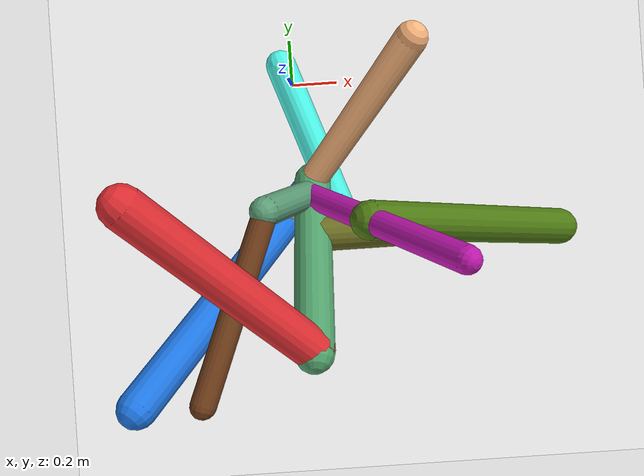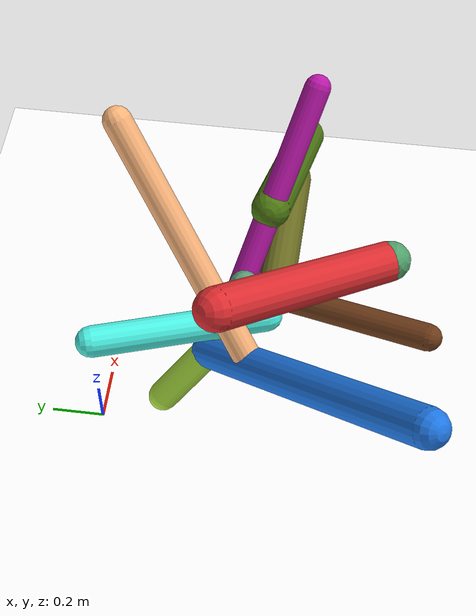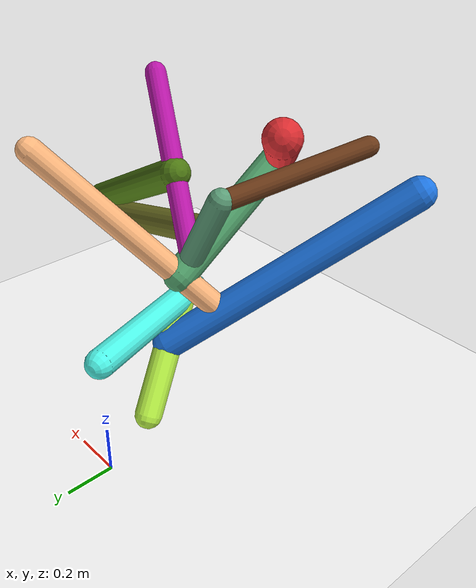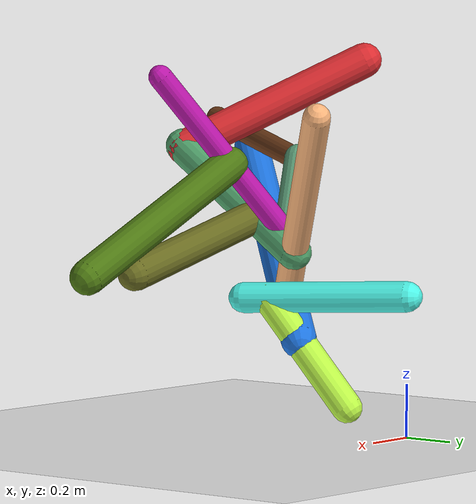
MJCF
<mujoco model="morphology">
  <option timestep="0.01"/>
  <default>
    <default class="/"/>
    <default class="0/"/>
    <default class="0/1/"/>
    <default class="0/1/2/"/>
    <default class="0/1/2/3/"/>
    <default class="0/1/2/3/4/"/>
    <default class="0/1/2/3/4/5/"/>
    <default class="0/1/2/3/4/6/"/>
    <default class="0/1/2/3/4/7/"/>
    <default class="0/1/2/3/4/7/8/"/>
    <default class="0/1/2/3/4/7/9/"/>
    <default class="0/1/2/3/4/7/9/10/"/>
  </default>
  <asset>
    <texture name="texplane" type="2d" builtin="checker" rgb1="0.10000000000000001 0.20000000000000001 0.29999999999999999" rgb2="0.20000000000000001 0.29999999999999999 0.40000000000000002" width="300" height="300"/>
    <material name="MatPlane" class="/" texture="texplane" texrepeat="20 20" specular="1" shininess="1" reflectance="0.5"/>
  </asset>
  <worldbody>
    <light name="//unnamed_light_0" class="/" directional="true" pos="0 0 1.5" dir="0 0 -1.3" cutoff="100" exponent="1" diffuse="1 1 1" specular="0.10000000000000001 0.10000000000000001 0.10000000000000001"/>
    <geom name="ground" class="/" type="plane" size="15 15 0.5" material="MatPlane" rgba="1 1 1 1"/>
    <site name="body" class="/" size="9.9999999999999995e-07 9.9999999999999995e-07 9.9999999999999995e-07" pos="0 0 0.52476311326026914"/>
    <body pos="0 0 0.52476311326026914" name="0/">
      <freejoint name="0/"/>
      <geom name="0/geom" class="0/" type="capsule" contype="1" conaffinity="1" condim="3" size="0.058018238157276227" rgba="0.3104268732166523 0.97795915610077488 0.92518313110191741 1" friction="0.59999999999999998 0.10000000000000001 0.10000000000000001" fromto="0 0 0 0.20763940196108199 -0.6102226792275377 -0.024332879514343153"/>
      <site name="0/end0" class="0/" size="0.0050000000000000001" pos="0.20763940196108199 -0.6102226792275377 -0.024332879514343153"/>
      <site name="0/attach1" class="0/" size="9.9999999999999995e-07 9.9999999999999995e-07 9.9999999999999995e-07" pos="0.17637003810476751 -0.5183264648774436 -0.020668480291364907"/>
      <body pos="0.17637003810476751 -0.5183264648774436 -0.020668480291364907" name="0/1/">
        <joint name="0/1/joint/" class="0/" type="hinge" axis="0 0 1" limited="true" range="-47.851003766145126 47.851003766145126"/>
        <geom name="0/1/geom" class="0/1/" type="capsule" contype="1" conaffinity="1" condim="3" size="0.057793921994657438" rgba="0.74977042771319269 0.98167339475718829 0.28516574791922156 1" friction="0.59999999999999998 0.10000000000000001 0.10000000000000001" fromto="0 0 0 -0.1166141013800257 0.28388154938468935 -0.40409463553934694"/>
        <site name="0/1/end1" class="0/1/" size="0.0050000000000000001" pos="-0.1166141013800257 0.28388154938468935 -0.40409463553934694"/>
        <site name="0/1/attach2" class="0/1/" size="9.9999999999999995e-07 9.9999999999999995e-07 9.9999999999999995e-07" pos="-0.04529269448603316 0.1102590521587196 -0.15694958546465734"/>
        <body pos="-0.04529269448603316 0.1102590521587196 -0.15694958546465734" name="0/1/2/">
          <joint name="0/1/2/joint/" class="0/1/" type="hinge" axis="-5.5511151231257827e-17 0.81826488798908259 0.57484134601141412" limited="true" range="-48.982863306983404 48.982863306983404"/>
          <geom name="0/1/2/geom" class="0/1/2/" type="capsule" contype="1" conaffinity="1" condim="3" size="0.067467982697976631" rgba="0.12214355084865369 0.47264547530669976 0.90410190714177541 1" friction="0.59999999999999998 0.10000000000000001 0.10000000000000001" fromto="0 0 0 -0.62122569915106673 -0.74960446030596817 0.67123893960255687"/>
          <site name="0/1/2/end2" class="0/1/2/" size="0.0050000000000000001" pos="-0.62122569915106673 -0.74960446030596817 0.67123893960255687"/>
          <site name="0/1/2/attach3" class="0/1/2/" size="9.9999999999999995e-07 9.9999999999999995e-07 9.9999999999999995e-07" pos="-0.14306754985793607 -0.17263302797213523 0.15458554047169934"/>
          <body pos="-0.14306754985793607 -0.17263302797213523 0.15458554047169934" name="0/1/2/3/">
            <geom name="0/1/2/3/geom" class="0/1/2/3/" type="capsule" contype="1" conaffinity="1" condim="3" size="0.051417912682217293" rgba="0.99690672814836523 0.72090841593708799 0.49183356278248236 1" friction="0.59999999999999998 0.10000000000000001 0.10000000000000001" fromto="0 0 0 0.46310530271411787 0.51662827109734177 0.70037705510490045"/>
            <site name="0/1/2/3/end3" class="0/1/2/3/" size="0.0050000000000000001" pos="0.46310530271411787 0.51662827109734177 0.70037705510490045"/>
            <site name="0/1/2/3/attach4" class="0/1/2/3/" size="9.9999999999999995e-07 9.9999999999999995e-07 9.9999999999999995e-07" pos="0.11202650308657582 0.12497386289361165 0.16942322159915124"/>
            <body pos="0.11202650308657582 0.12497386289361165 0.16942322159915124" name="0/1/2/3/4/">
              <joint name="0/1/2/3/4/joint/" class="0/1/2/3/" type="hinge" axis="5.5511151231257827e-17 -0.80474791241741073 0.59361670921548282" limited="true" range="-34.162449533638181 34.162449533638181"/>
              <geom name="0/1/2/3/4/geom" class="0/1/2/3/4/" type="capsule" contype="1" conaffinity="1" condim="3" size="0.065976275313054777" rgba="0.32191040234884061 0.64173571025564313 0.42649338279258764 1" friction="0.59999999999999998 0.10000000000000001 0.10000000000000001" fromto="0 0 0 -0.0074662863320388295 -0.5557775255351467 0.37929243352049014"/>
              <site name="0/1/2/3/4/end4" class="0/1/2/3/4/" size="0.0050000000000000001" pos="-0.0074662863320388295 -0.5557775255351467 0.37929243352049014"/>
              <site name="0/1/2/3/4/attach5" class="0/1/2/3/4/" size="9.9999999999999995e-07 9.9999999999999995e-07 9.9999999999999995e-07" pos="-0.0025267762455866271 -0.18808888206268973 0.12836195513126153"/>
              <body pos="-0.0025267762455866271 -0.18808888206268973 0.12836195513126153" name="0/1/2/3/4/5/">
                <joint name="0/1/2/3/4/5/joint/" class="0/1/2/3/4/" type="hinge" axis="0.99993844272667864 -0.0091647173954481076 0.0062544953758251198" limited="true" range="-50.181427118853144 50.181427118853144"/>
                <geom name="0/1/2/3/4/5/geom" class="0/1/2/3/4/5/" type="capsule" contype="1" conaffinity="1" condim="3" size="0.063218511868542493" rgba="0.42452376291990457 0.43185749179383015 0.13450828679012672 1" friction="0.59999999999999998 0.10000000000000001 0.10000000000000001" fromto="0 0 0 0.67741377673118031 -0.010192829291045147 -0.17513368538627139"/>
                <site name="0/1/2/3/4/5/end5" class="0/1/2/3/4/5/" size="0.0050000000000000001" pos="0.67741377673118031 -0.010192829291045147 -0.17513368538627139"/>
              </body>
              <site name="0/1/2/3/4/attach6" class="0/1/2/3/4/" size="9.9999999999999995e-07 9.9999999999999995e-07 9.9999999999999995e-07" pos="-0.0073492380058372666 -0.5470646492521698 0.37334629878761982"/>
              <body pos="-0.0073492380058372666 -0.5470646492521698 0.37334629878761982" name="0/1/2/3/4/6/">
                <joint name="0/1/2/3/4/6/joint/" class="0/1/2/3/4/" type="hinge" axis="0.99993844272667864 -0.0091647173954481076 0.0062544953758251198" limited="true" range="-58.727375760272906 58.727375760272906"/>
                <geom name="0/1/2/3/4/6/geom" class="0/1/2/3/4/6/" type="capsule" contype="1" conaffinity="1" condim="3" size="0.0671305442745352" rgba="0.87801690757449857 0.18081902157477558 0.19811719812329764 1" friction="0.59999999999999998 0.10000000000000001 0.10000000000000001" fromto="0 0 0 -0.48256943526345708 0.49166091808391843 0.33009083122223282"/>
                <site name="0/1/2/3/4/6/end6" class="0/1/2/3/4/6/" size="0.0050000000000000001" pos="-0.48256943526345708 0.49166091808391843 0.33009083122223282"/>
              </body>
              <site name="0/1/2/3/4/attach7" class="0/1/2/3/4/" size="9.9999999999999995e-07 9.9999999999999995e-07 9.9999999999999995e-07" pos="-0.00059243211686771011 -0.04409962882716998 0.030095955245944696"/>
              <body pos="-0.00059243211686771011 -0.04409962882716998 0.030095955245944696" name="0/1/2/3/4/7/">
                <joint name="0/1/2/3/4/7/joint/" class="0/1/2/3/4/" type="hinge" axis="0.99993844272667864 -0.0091647173954481076 0.0062544953758251198" limited="true" range="-48.571983247994574 48.571983247994574"/>
                <geom name="0/1/2/3/4/7/geom" class="0/1/2/3/4/7/" type="capsule" contype="1" conaffinity="1" condim="3" size="0.050553776567161868" rgba="0.36972605793858515 0.63254806308786748 0.48140011344848821 1" friction="0.59999999999999998 0.10000000000000001 0.10000000000000001" fromto="0 0 0 -0.14034223162969206 -0.053592763937585497 0.31606290003887461"/>
                <site name="0/1/2/3/4/7/end7" class="0/1/2/3/4/7/" size="0.0050000000000000001" pos="-0.14034223162969206 -0.053592763937585497 0.31606290003887461"/>
                <site name="0/1/2/3/4/7/attach8" class="0/1/2/3/4/7/" size="9.9999999999999995e-07 9.9999999999999995e-07 9.9999999999999995e-07" pos="-0.13730070820597956 -0.052431291407436742 0.30921312500913678"/>
                <body pos="-0.13730070820597956 -0.052431291407436742 0.30921312500913678" name="0/1/2/3/4/7/8/">
                  <joint name="0/1/2/3/4/7/8/joint/" class="0/1/2/3/4/7/" type="hinge" axis="1.6653345369377348e-16 0.98592684703530664 0.1671773079548162" limited="true" range="-47.437318128291778 47.437318128291778"/>
                  <geom name="0/1/2/3/4/7/8/geom" class="0/1/2/3/4/7/8/" type="capsule" contype="1" conaffinity="1" condim="3" size="0.042187551281459304" rgba="0.43104893308190351 0.2328432424105239 0.099476609301629604 1" friction="0.59999999999999998 0.10000000000000001 0.10000000000000001" fromto="0 0 0 -0.21364969108080301 -0.5792825721417646 0.13179184706532165"/>
                  <site name="0/1/2/3/4/7/8/end8" class="0/1/2/3/4/7/8/" size="0.0050000000000000001" pos="-0.21364969108080301 -0.5792825721417646 0.13179184706532165"/>
                </body>
                <site name="0/1/2/3/4/7/attach9" class="0/1/2/3/4/7/" size="9.9999999999999995e-07 9.9999999999999995e-07 9.9999999999999995e-07" pos="-0.015136955633879332 -0.0057803790106510499 0.034089739345369567"/>
                <body pos="-0.015136955633879332 -0.0057803790106510499 0.034089739345369567" name="0/1/2/3/4/7/9/">
                  <joint name="0/1/2/3/4/7/9/joint/" class="0/1/2/3/4/7/" type="hinge" axis="0.91606188775366393 -0.067044274052177083 0.39539307419580655" limited="true" range="-51.21855784571666 51.21855784571666"/>
                  <geom name="0/1/2/3/4/7/9/geom" class="0/1/2/3/4/7/9/" type="capsule" contype="1" conaffinity="1" condim="3" size="0.044467216223533279" rgba="0.7481898768734262 0.090204612074832657 0.67889077786085916 1" friction="0.59999999999999998 0.10000000000000001 0.10000000000000001" fromto="0 0 0 0.47060179263683199 -0.21558265691065603 0.59977892800157684"/>
                  <site name="0/1/2/3/4/7/9/end9" class="0/1/2/3/4/7/9/" size="0.0050000000000000001" pos="0.47060179263683199 -0.21558265691065603 0.59977892800157684"/>
                  <site name="0/1/2/3/4/7/9/attach10" class="0/1/2/3/4/7/9/" size="9.9999999999999995e-07 9.9999999999999995e-07 9.9999999999999995e-07" pos="0.21195613648407988 -0.097097095180464249 0.27013671922385207"/>
                  <body pos="0.21195613648407988 -0.097097095180464249 0.27013671922385207" name="0/1/2/3/4/7/9/10/">
                    <geom name="0/1/2/3/4/7/9/10/geom" class="0/1/2/3/4/7/9/10/" type="capsule" contype="1" conaffinity="1" condim="3" size="0.066253723939014381" rgba="0.31007089501421425 0.48309656393878231 0.077589000944372377 1" friction="0.59999999999999998 0.10000000000000001 0.10000000000000001" fromto="0 0 0 0.70423652517919599 -0.079522510565023241 -0.37930849385045251"/>
                    <site name="0/1/2/3/4/7/9/10/end10" class="0/1/2/3/4/7/9/10/" size="0.0050000000000000001" pos="0.70423652517919599 -0.079522510565023241 -0.37930849385045251"/>
                  </body>
                </body>
              </body>
            </body>
          </body>
        </body>
      </body>
      <camera name="0/iso" class="0/" mode="trackcom" pos="-2.2999999999999998 -2.2999999999999998 1" xyaxes="0.45000000000000001 -0.45000000000000001 0 0.29999999999999999 0.14999999999999999 0.93999999999999995"/>
    </body>
  </worldbody>
  <actuator>
    <motor name="0/1/motor" class="0/1/" ctrllimited="true" ctrlrange="-1 1" gear="72" joint="0/1/joint/"/>
    <motor name="0/1/2/motor" class="0/1/2/" ctrllimited="true" ctrlrange="-1 1" gear="77" joint="0/1/2/joint/"/>
    <motor name="0/1/2/3/4/motor" class="0/1/2/3/4/" ctrllimited="true" ctrlrange="-1 1" gear="87" joint="0/1/2/3/4/joint/"/>
    <motor name="0/1/2/3/4/5/motor" class="0/1/2/3/4/5/" ctrllimited="true" ctrlrange="-1 1" gear="73" joint="0/1/2/3/4/5/joint/"/>
    <motor name="0/1/2/3/4/6/motor" class="0/1/2/3/4/6/" ctrllimited="true" ctrlrange="-1 1" gear="80" joint="0/1/2/3/4/6/joint/"/>
    <motor name="0/1/2/3/4/7/motor" class="0/1/2/3/4/7/" ctrllimited="true" ctrlrange="-1 1" gear="89" joint="0/1/2/3/4/7/joint/"/>
    <motor name="0/1/2/3/4/7/8/motor" class="0/1/2/3/4/7/8/" ctrllimited="true" ctrlrange="-1 1" gear="55" joint="0/1/2/3/4/7/8/joint/"/>
    <motor name="0/1/2/3/4/7/9/motor" class="0/1/2/3/4/7/9/" ctrllimited="true" ctrlrange="-1 1" gear="84" joint="0/1/2/3/4/7/9/joint/"/>
  </actuator>
  <sensor>
    <subtreelinvel name="velocity" body="0/"/>
  </sensor>
</mujoco>
